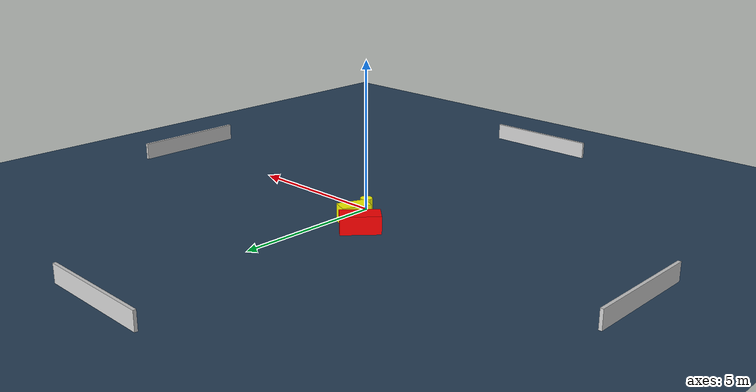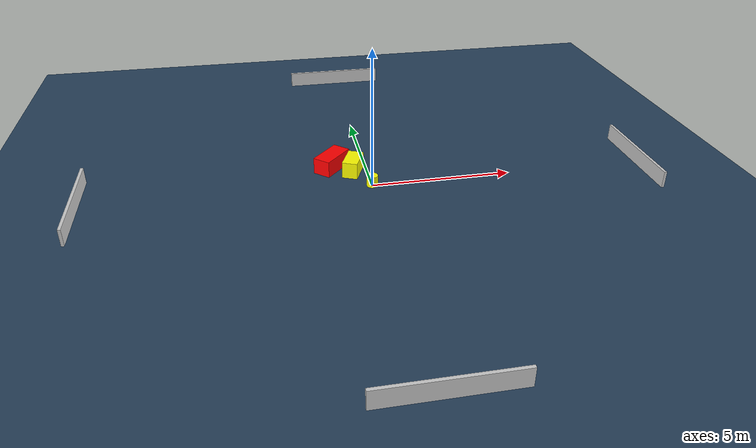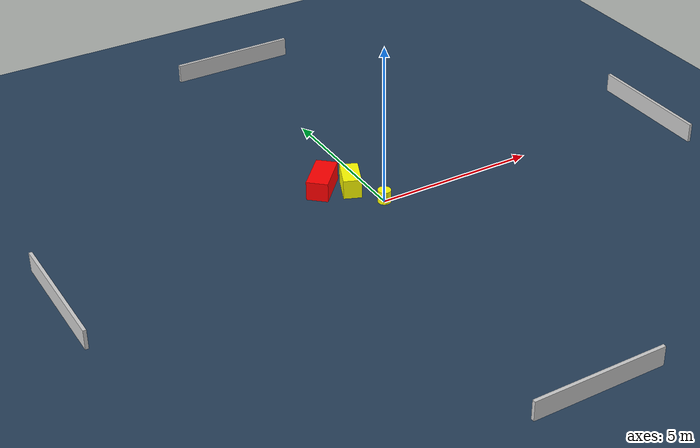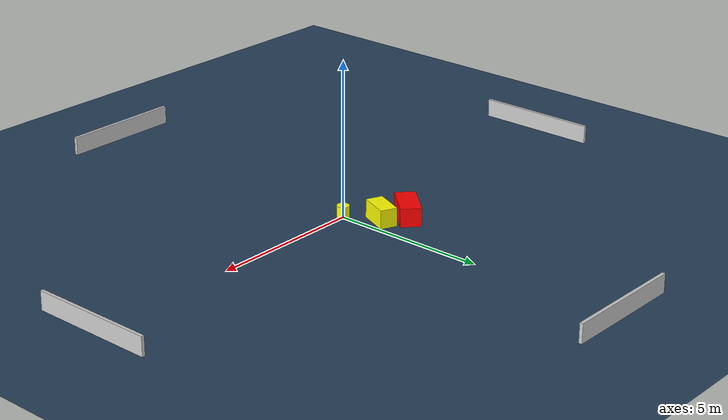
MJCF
<?xml version="1.0" ?>
<mujoco model="generated_environment">
  <option timestep="0.01" integrator="RK4" cone="elliptic"/>
  <default>
    <geom density="1"/>
  </default>
  <asset>
    <texture builtin="gradient" height="3072" name="skybox" rgb1="0.3 0.5 0.7" rgb2="0 0 0" type="skybox" width="512"/>
    <texture builtin="checker" height="300" name="groundplane" rgb1="0.2 0.3 0.4" rgb2="0.1 0.2 0.3" type="2d" width="300"/>
    <material name="groundplane" reflectance="0.2" texrepeat="5 5" texture="groundplane"/>
  </asset>
  <worldbody>
    <light dir="0 0 -1" directional="true" pos="0 0 1.5"/>
    <geom condim="3" friction="0.5 0.005 0.001" material="groundplane" name="floor" pos="0 0 0" size="0 0 0.05" type="plane"/>
    <body name="walls">
      <geom name="wall_1" condim="4" pos="-10.0 0.0 0.3" rgba="0.800000011920929 0.800000011920929 0.800000011920929 1.0" size="0.05 2.0 0.3" type="box"/>
      <geom name="wall_2" condim="4" pos="10.0 0.0 0.3" rgba="0.800000011920929 0.800000011920929 0.800000011920929 1.0" size="0.05 2.0 0.3" type="box"/>
      <geom name="wall_3" condim="4" pos="0.0 -10.0 0.3" rgba="0.800000011920929 0.800000011920929 0.800000011920929 1.0" size="2.0 0.05 0.3" type="box"/>
      <geom name="wall_4" condim="4" pos="0.0 10.0 0.3" rgba="0.800000011920929 0.800000011920929 0.800000011920929 1.0" size="2.0 0.05 0.3" type="box"/>
    </body>
    <body name="robot">
      <joint name="joint_x" type="slide" pos="0 0 0" axis="1 0 0"/>
      <joint name="joint_y" type="slide" pos="0 0 0" axis="0 1 0"/>
      <geom name="robot" type="cylinder" pos="0.0 0.0 0.2" size="0.2 0.2 0.0" mass="5.0" friction="1.0 0.005 0.0001" condim="4" rgba="1.0 1.0 0.0 1.0"/>
    </body>
    <body name="obstacle_1_movable">
      <geom name="obstacle_1_movable" condim="4" pos="-0.5165830465685285 1.0811045338696246 0.3" euler="0 0 157.09249020914461" friction="0.0 0.005 0.001" rgba="1.0 1.0 0.0 1.0" size="0.2759458160052926 0.4962445585307763 0.3" type="box" mass="0.1"/>
      <joint type="free"/>
    </body>
    <body name="obstacle_2_static">
      <geom name="obstacle_2_static" condim="4" pos="-1.2350760456376995 1.524113529094067 0.3" euler="0 0 47.68413831540141" friction="0.0 0.005 0.001" rgba="1.0 0.0 0.0 1.0" size="0.65341998262145 0.3296327224606084 0.3" type="box"/>
    </body>
  </worldbody>
  <actuator>
    <motor name="actuator_x" joint="joint_x" gear="1" ctrlrange="-1 1"/>
    <motor name="actuator_y" joint="joint_y" gear="1" ctrlrange="-1 1"/>
  </actuator>
</mujoco>
